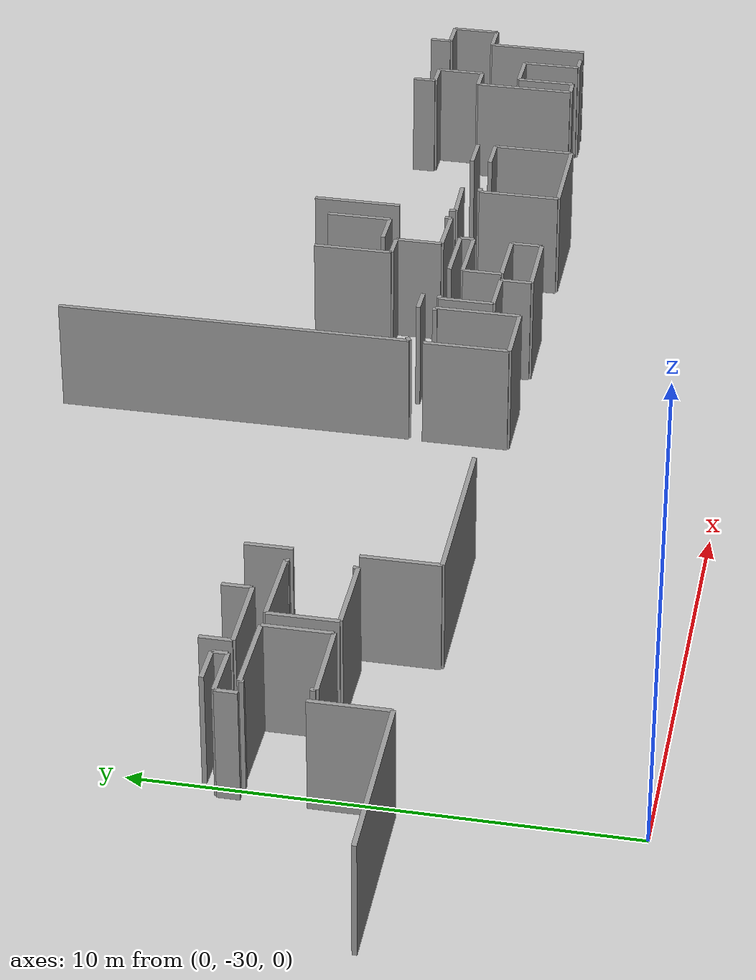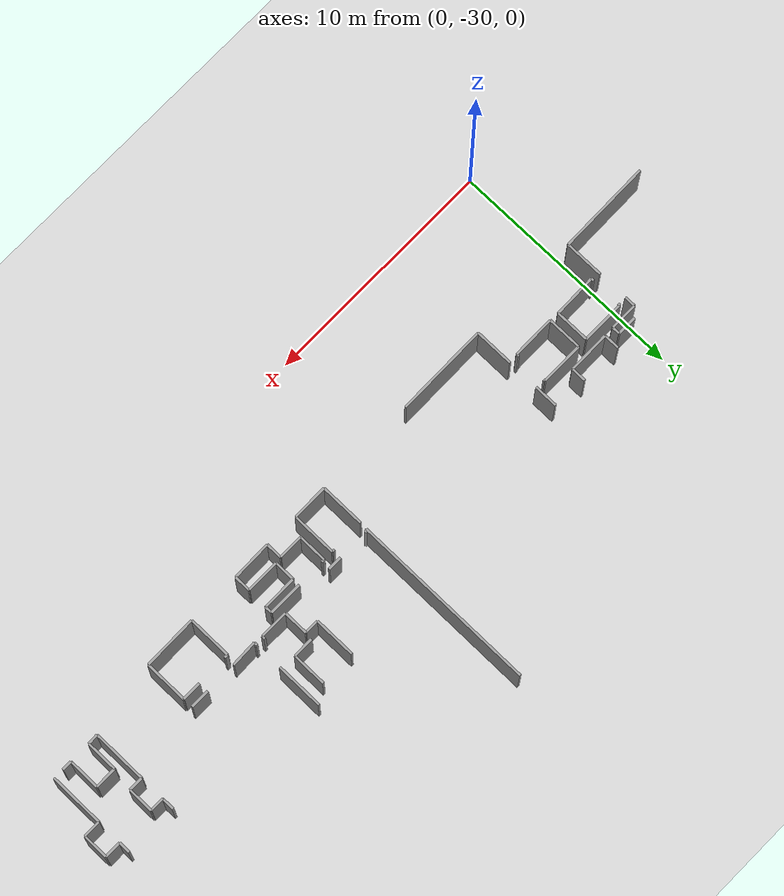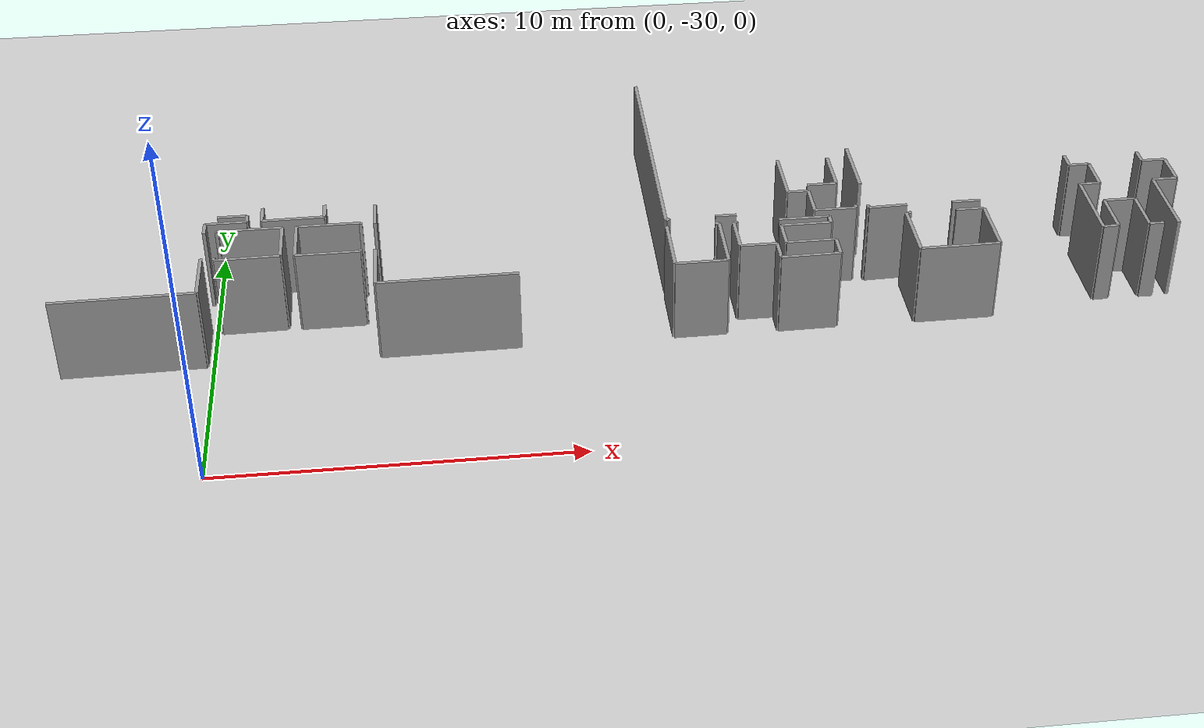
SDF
<sdf version="1.6">
 <world name="default">
  <model name="ground_plane">
   <static>1</static>
   <link name="link">
    <collision name="collision">
     <geometry><plane><normal>0 0 1</normal><size>100 100</size></plane></geometry>
     <surface><friction><ode><mu>100</mu><mu2>50</mu2></ode></friction></surface>
    </collision>
    <visual name="visual">
     <cast_shadows>0</cast_shadows>
     <geometry><plane><normal>0 0 1</normal><size>100 100</size></plane></geometry>
     <material>
      <script><uri>file://media/materials/scripts/gazebo.material</uri><name>Gazebo/Grey</name></script>
     </material>
    </visual>
   </link>
  </model>
  <model name="0510035342_A_40_1_101">
   <static>1</static>
   <link name="Wall_184">
    <collision name="Wall_184_Collision">
     <geometry><box><size>0.83460327136 0.1 2.5</size></box></geometry>
     <pose>0.41730163568 0 1.25 0 0 0</pose>
    </collision>
    <visual name="Wall_184_Visual">
     <pose>0.41730163568 0 1.25 0 0 0</pose>
     <geometry><box><size>0.83460327136 0.1 2.5</size></box></geometry>
     <material>
      <script><uri>file://media/materials/scripts/gazebo.material</uri><name>Gazebo/Grey</name></script>
      <ambient>1 1 1 1</ambient>
     </material>
    </visual>
    <pose>115.832063395 -46.8073758001 0 0 0 0.0</pose>
   </link>
   <link name="Wall_185">
    <collision name="Wall_185_Collision">
     <geometry><box><size>0.318500457178 0.1 2.5</size></box></geometry>
     <pose>0.159250228589 0 1.25 0 0 0</pose>
    </collision>
    <visual name="Wall_185_Visual">
     <pose>0.159250228589 0 1.25 0 0 0</pose>
     <geometry><box><size>0.318500457178 0.1 2.5</size></box></geometry>
     <material>
      <script><uri>file://media/materials/scripts/gazebo.material</uri><name>Gazebo/Grey</name></script>
      <ambient>1 1 1 1</ambient>
     </material>
    </visual>
    <pose>116.666666667 -46.8073758001 0 0 0 -1.57079632679</pose>
   </link>
   <link name="Wall_186">
    <collision name="Wall_186_Collision">
     <geometry><box><size>1.16402519557 0.1 2.5</size></box></geometry>
     <pose>0.582012597785 0 1.25 0 0 0</pose>
    </collision>
    <visual name="Wall_186_Visual">
     <pose>0.582012597785 0 1.25 0 0 0</pose>
     <geometry><box><size>1.16402519557 0.1 2.5</size></box></geometry>
     <material>
      <script><uri>file://media/materials/scripts/gazebo.material</uri><name>Gazebo/Grey</name></script>
      <ambient>1 1 1 1</ambient>
     </material>
    </visual>
    <pose>116.666666667 -47.1258762572 0 0 0 3.14159265359</pose>
   </link>
   <link name="Wall_187">
    <collision name="Wall_187_Collision">
     <geometry><box><size>0.461241491415 0.1 2.5</size></box></geometry>
     <pose>0.230620745708 0 1.25 0 0 0</pose>
    </collision>
    <visual name="Wall_187_Visual">
     <pose>0.230620745708 0 1.25 0 0 0</pose>
     <geometry><box><size>0.461241491415 0.1 2.5</size></box></geometry>
     <material>
      <script><uri>file://media/materials/scripts/gazebo.material</uri><name>Gazebo/Grey</name></script>
      <ambient>1 1 1 1</ambient>
     </material>
    </visual>
    <pose>115.502641471 -47.1258762572 0 0 0 -1.57079632679</pose>
   </link>
   <link name="Wall_188">
    <collision name="Wall_188_Collision">
     <geometry><box><size>1.63390226557 0.1 2.5</size></box></geometry>
     <pose>0.816951132785 0 1.25 0 0 0</pose>
    </collision>
    <visual name="Wall_188_Visual">
     <pose>0.816951132785 0 1.25 0 0 0</pose>
     <geometry><box><size>1.63390226557 0.1 2.5</size></box></geometry>
     <material>
      <script><uri>file://media/materials/scripts/gazebo.material</uri><name>Gazebo/Grey</name></script>
      <ambient>1 1 1 1</ambient>
     </material>
    </visual>
    <pose>115.502641471 -48.8740729452 0 0 0 -1.57079632679</pose>
   </link>
   <link name="Wall_189">
    <collision name="Wall_189_Collision">
     <geometry><box><size>3.94637262156 0.1 2.5</size></box></geometry>
     <pose>1.97318631078 0 1.25 0 0 0</pose>
    </collision>
    <visual name="Wall_189_Visual">
     <pose>1.97318631078 0 1.25 0 0 0</pose>
     <geometry><box><size>3.94637262156 0.1 2.5</size></box></geometry>
     <material>
      <script><uri>file://media/materials/scripts/gazebo.material</uri><name>Gazebo/Grey</name></script>
      <ambient>1 1 1 1</ambient>
     </material>
    </visual>
    <pose>115.502641471 -50.5079752108 0 0 0 -3.12698246769</pose>
   </link>
   <link name="Wall_190">
    <collision name="Wall_190_Collision">
     <geometry><box><size>1.64736360866 0.1 2.5</size></box></geometry>
     <pose>0.823681804328 0 1.25 0 0 0</pose>
    </collision>
    <visual name="Wall_190_Visual">
     <pose>0.823681804328 0 1.25 0 0 0</pose>
     <geometry><box><size>1.64736360866 0.1 2.5</size></box></geometry>
     <material>
      <script><uri>file://media/materials/scripts/gazebo.material</uri><name>Gazebo/Grey</name></script>
      <ambient>1 1 1 1</ambient>
     </material>
    </visual>
    <pose>120.27786244 -50.5669003353 0 0 0 1.57079632679</pose>
   </link>
   <link name="Wall_191">
    <collision name="Wall_191_Collision">
     <geometry><box><size>0.98826577263 0.1 2.5</size></box></geometry>
     <pose>0.494132886315 0 1.25 0 0 0</pose>
    </collision>
    <visual name="Wall_191_Visual">
     <pose>0.494132886315 0 1.25 0 0 0</pose>
     <geometry><box><size>0.98826577263 0.1 2.5</size></box></geometry>
     <material>
      <script><uri>file://media/materials/scripts/gazebo.material</uri><name>Gazebo/Grey</name></script>
      <ambient>1 1 1 1</ambient>
     </material>
    </visual>
    <pose>120.27786244 -47.5980392157 0 0 0 1.57079632679</pose>
   </link>
   <link name="Wall_206">
    <collision name="Wall_206_Collision">
     <geometry><box><size>3.89964801912 0.1 2.5</size></box></geometry>
     <pose>1.94982400956 0 1.25 0 0 0</pose>
    </collision>
    <visual name="Wall_206_Visual">
     <pose>1.94982400956 0 1.25 0 0 0</pose>
     <geometry><box><size>3.89964801912 0.1 2.5</size></box></geometry>
     <material>
      <script><uri>file://media/materials/scripts/gazebo.material</uri><name>Gazebo/Grey</name></script>
      <ambient>1 1 1 1</ambient>
     </material>
    </visual>
    <pose>124.177334146 -50.5298181449 0 0 0 -3.13208339812</pose>
   </link>
   <link name="Wall_207">
    <collision name="Wall_207_Collision">
     <geometry><box><size>7.79818144875 0.1 2.5</size></box></geometry>
     <pose>3.89909072437 0 1.25 0 0 0</pose>
    </collision>
    <visual name="Wall_207_Visual">
     <pose>3.89909072437 0 1.25 0 0 0</pose>
     <geometry><box><size>7.79818144875 0.1 2.5</size></box></geometry>
     <material>
      <script><uri>file://media/materials/scripts/gazebo.material</uri><name>Gazebo/Grey</name></script>
      <ambient>1 1 1 1</ambient>
     </material>
    </visual>
    <pose>128.467946764 -48.3739713502 0 0 0 1.57079632679</pose>
   </link>
   <link name="Wall_221">
    <collision name="Wall_221_Collision">
     <geometry><box><size>0.603982525653 0.1 2.5</size></box></geometry>
     <pose>0.301991262826 0 1.25 0 0 0</pose>
    </collision>
    <visual name="Wall_221_Visual">
     <pose>0.301991262826 0 1.25 0 0 0</pose>
     <geometry><box><size>0.603982525653 0.1 2.5</size></box></geometry>
     <material>
      <script><uri>file://media/materials/scripts/gazebo.material</uri><name>Gazebo/Grey</name></script>
      <ambient>1 1 1 1</ambient>
     </material>
    </visual>
    <pose>130.491212029 -48.3008229198 0 0 0 3.14159265359</pose>
   </link>
   <link name="Wall_222">
    <collision name="Wall_222_Collision">
     <geometry><box><size>0.138921933279 0.1 2.5</size></box></geometry>
     <pose>0.0694609666396 0 1.25 0 0 0</pose>
    </collision>
    <visual name="Wall_222_Visual">
     <pose>0.0694609666396 0 1.25 0 0 0</pose>
     <geometry><box><size>0.138921933279 0.1 2.5</size></box></geometry>
     <material>
      <script><uri>file://media/materials/scripts/gazebo.material</uri><name>Gazebo/Grey</name></script>
      <ambient>1 1 1 1</ambient>
     </material>
    </visual>
    <pose>128.586051001 -48.3008229198 0 0 0 -2.58706308322</pose>
   </link>
   <link name="Wall_223">
    <collision name="Wall_223_Collision">
     <geometry><box><size>0.141217108605 0.1 2.5</size></box></geometry>
     <pose>0.0706085543025 0 1.25 0 0 0</pose>
    </collision>
    <visual name="Wall_223_Visual">
     <pose>0.0706085543025 0 1.25 0 0 0</pose>
     <geometry><box><size>0.141217108605 0.1 2.5</size></box></geometry>
     <material>
      <script><uri>file://media/materials/scripts/gazebo.material</uri><name>Gazebo/Grey</name></script>
      <ambient>1 1 1 1</ambient>
     </material>
    </visual>
    <pose>134.323377019 -48.3528903789 0 0 0 1.57079632679</pose>
   </link>
   <link name="Wall_224">
    <collision name="Wall_224_Collision">
     <geometry><box><size>1.9783094585 0.1 2.5</size></box></geometry>
     <pose>0.989154729249 0 1.25 0 0 0</pose>
    </collision>
    <visual name="Wall_224_Visual">
     <pose>0.989154729249 0 1.25 0 0 0</pose>
     <geometry><box><size>1.9783094585 0.1 2.5</size></box></geometry>
     <material>
      <script><uri>file://media/materials/scripts/gazebo.material</uri><name>Gazebo/Grey</name></script>
      <ambient>1 1 1 1</ambient>
     </material>
    </visual>
    <pose>134.323377019 -47.050695926 0 0 0 1.57079632679</pose>
   </link>
   <link name="Wall_238">
    <collision name="Wall_238_Collision">
     <geometry><box><size>0.820887940668 0.1 2.5</size></box></geometry>
     <pose>0.410443970334 0 1.25 0 0 0</pose>
    </collision>
    <visual name="Wall_238_Visual">
     <pose>0.410443970334 0 1.25 0 0 0</pose>
     <geometry><box><size>0.820887940668 0.1 2.5</size></box></geometry>
     <material>
      <script><uri>file://media/materials/scripts/gazebo.material</uri><name>Gazebo/Grey</name></script>
      <ambient>1 1 1 1</ambient>
     </material>
    </visual>
    <pose>137.585339835 -48.3135223001 0 0 0 3.14159265359</pose>
   </link>
   <link name="Wall_239">
    <collision name="Wall_239_Collision">
     <geometry><box><size>1.11493887783 0.1 2.5</size></box></geometry>
     <pose>0.557469438913 0 1.25 0 0 0</pose>
    </collision>
    <visual name="Wall_239_Visual">
     <pose>0.557469438913 0 1.25 0 0 0</pose>
     <geometry><box><size>1.11493887783 0.1 2.5</size></box></geometry>
     <material>
      <script><uri>file://media/materials/scripts/gazebo.material</uri><name>Gazebo/Grey</name></script>
      <ambient>1 1 1 1</ambient>
     </material>
    </visual>
    <pose>135.437620644 -48.3135223001 0 0 0 -3.10627568267</pose>
   </link>
   <link name="Wall_250">
    <collision name="Wall_250_Collision">
     <geometry><box><size>0.668749365031 0.1 2.5</size></box></geometry>
     <pose>0.334374682515 0 1.25 0 0 0</pose>
    </collision>
    <visual name="Wall_250_Visual">
     <pose>0.334374682515 0 1.25 0 0 0</pose>
     <geometry><box><size>0.668749365031 0.1 2.5</size></box></geometry>
     <material>
      <script><uri>file://media/materials/scripts/gazebo.material</uri><name>Gazebo/Grey</name></script>
      <ambient>1 1 1 1</ambient>
     </material>
    </visual>
    <pose>117.086762166 -47.124098344 0 0 0 1.57079632679</pose>
   </link>
   <link name="Wall_258">
    <collision name="Wall_258_Collision">
     <geometry><box><size>0.615157980291 0.1 2.5</size></box></geometry>
     <pose>0.307578990145 0 1.25 0 0 0</pose>
    </collision>
    <visual name="Wall_258_Visual">
     <pose>0.307578990145 0 1.25 0 0 0</pose>
     <geometry><box><size>0.615157980291 0.1 2.5</size></box></geometry>
     <material>
      <script><uri>file://media/materials/scripts/gazebo.material</uri><name>Gazebo/Grey</name></script>
      <ambient>1 1 1 1</ambient>
     </material>
    </visual>
    <pose>118.845880321 -46.4860814792 0 0 0 -1.57079632679</pose>
   </link>
   <link name="Wall_259">
    <collision name="Wall_259_Collision">
     <geometry><box><size>1.75926666881 0.1 2.5</size></box></geometry>
     <pose>0.879633334403 0 1.25 0 0 0</pose>
    </collision>
    <visual name="Wall_259_Visual">
     <pose>0.879633334403 0 1.25 0 0 0</pose>
     <geometry><box><size>1.75926666881 0.1 2.5</size></box></geometry>
     <material>
      <script><uri>file://media/materials/scripts/gazebo.material</uri><name>Gazebo/Grey</name></script>
      <ambient>1 1 1 1</ambient>
     </material>
    </visual>
    <pose>118.845880321 -47.1012394595 0 0 0 -3.12859887149</pose>
   </link>
   <link name="Wall_260">
    <collision name="Wall_260_Collision">
     <geometry><box><size>0.113024484405 0.1 2.5</size></box></geometry>
     <pose>0.0565122422026 0 1.25 0 0 0</pose>
    </collision>
    <visual name="Wall_260_Visual">
     <pose>0.0565122422026 0 1.25 0 0 0</pose>
     <geometry><box><size>0.113024484405 0.1 2.5</size></box></geometry>
     <material>
      <script><uri>file://media/materials/scripts/gazebo.material</uri><name>Gazebo/Grey</name></script>
      <ambient>1 1 1 1</ambient>
     </material>
    </visual>
    <pose>115.857462156 -48.986843442 0 0 0 1.57079632679</pose>
   </link>
   <link name="Wall_261">
    <collision name="Wall_261_Collision">
     <geometry><box><size>0.0878797114701 0.1 2.5</size></box></geometry>
     <pose>0.043939855735 0 1.25 0 0 0</pose>
    </collision>
    <visual name="Wall_261_Visual">
     <pose>0.043939855735 0 1.25 0 0 0</pose>
     <geometry><box><size>0.0878797114701 0.1 2.5</size></box></geometry>
     <material>
      <script><uri>file://media/materials/scripts/gazebo.material</uri><name>Gazebo/Grey</name></script>
      <ambient>1 1 1 1</ambient>
     </material>
    </visual>
    <pose>115.857462156 -47.6181042365 0 0 0 1.57079632679</pose>
   </link>
   <link name="Wall_262">
    <collision name="Wall_262_Collision">
     <geometry><box><size>1.81423346541 0.1 2.5</size></box></geometry>
     <pose>0.907116732703 0 1.25 0 0 0</pose>
    </collision>
    <visual name="Wall_262_Visual">
     <pose>0.907116732703 0 1.25 0 0 0</pose>
     <geometry><box><size>1.81423346541 0.1 2.5</size></box></geometry>
     <material>
      <script><uri>file://media/materials/scripts/gazebo.material</uri><name>Gazebo/Grey</name></script>
      <ambient>1 1 1 1</ambient>
     </material>
    </visual>
    <pose>115.857462156 -47.530224525 0 0 0 0.0</pose>
   </link>
   <link name="Wall_263">
    <collision name="Wall_263_Collision">
     <geometry><box><size>1.42334654069 0.1 2.5</size></box></geometry>
     <pose>0.711673270344 0 1.25 0 0 0</pose>
    </collision>
    <visual name="Wall_263_Visual">
     <pose>0.711673270344 0 1.25 0 0 0</pose>
     <geometry><box><size>1.42334654069 0.1 2.5</size></box></geometry>
     <material>
      <script><uri>file://media/materials/scripts/gazebo.material</uri><name>Gazebo/Grey</name></script>
      <ambient>1 1 1 1</ambient>
     </material>
    </visual>
    <pose>117.671695621 -47.530224525 0 0 0 -1.57079632679</pose>
   </link>
   <link name="Wall_264">
    <collision name="Wall_264_Collision">
     <geometry><box><size>1.81453854135 0.1 2.5</size></box></geometry>
     <pose>0.907269270673 0 1.25 0 0 0</pose>
    </collision>
    <visual name="Wall_264_Visual">
     <pose>0.907269270673 0 1.25 0 0 0</pose>
     <geometry><box><size>1.81453854135 0.1 2.5</size></box></geometry>
     <material>
      <script><uri>file://media/materials/scripts/gazebo.material</uri><name>Gazebo/Grey</name></script>
      <ambient>1 1 1 1</ambient>
     </material>
    </visual>
    <pose>117.671695621 -48.9535710657 0 0 0 -3.1232550761</pose>
   </link>
   <link name="Wall_265">
    <collision name="Wall_265_Collision">
     <geometry><box><size>1.4523011277 0.1 2.5</size></box></geometry>
     <pose>0.726150563852 0 1.25 0 0 0</pose>
    </collision>
    <visual name="Wall_265_Visual">
     <pose>0.726150563852 0 1.25 0 0 0</pose>
     <geometry><box><size>1.4523011277 0.1 2.5</size></box></geometry>
     <material>
      <script><uri>file://media/materials/scripts/gazebo.material</uri><name>Gazebo/Grey</name></script>
      <ambient>1 1 1 1</ambient>
     </material>
    </visual>
    <pose>118.072234075 -48.9863354668 0 0 0 1.57079632679</pose>
   </link>
   <link name="Wall_266">
    <collision name="Wall_266_Collision">
     <geometry><box><size>1.80153408514 0.1 2.5</size></box></geometry>
     <pose>0.900767042568 0 1.25 0 0 0</pose>
    </collision>
    <visual name="Wall_266_Visual">
     <pose>0.900767042568 0 1.25 0 0 0</pose>
     <geometry><box><size>1.80153408514 0.1 2.5</size></box></geometry>
     <material>
      <script><uri>file://media/materials/scripts/gazebo.material</uri><name>Gazebo/Grey</name></script>
      <ambient>1 1 1 1</ambient>
     </material>
    </visual>
    <pose>118.072234075 -47.5340343391 0 0 0 0.0</pose>
   </link>
   <link name="Wall_267">
    <collision name="Wall_267_Collision">
     <geometry><box><size>0.0711165295134 0.1 2.5</size></box></geometry>
     <pose>0.0355582647567 0 1.25 0 0 0</pose>
    </collision>
    <visual name="Wall_267_Visual">
     <pose>0.0355582647567 0 1.25 0 0 0</pose>
     <geometry><box><size>0.0711165295134 0.1 2.5</size></box></geometry>
     <material>
      <script><uri>file://media/materials/scripts/gazebo.material</uri><name>Gazebo/Grey</name></script>
      <ambient>1 1 1 1</ambient>
     </material>
    </visual>
    <pose>119.87376816 -47.5340343391 0 0 0 -1.57079632679</pose>
   </link>
   <link name="Wall_268">
    <collision name="Wall_268_Collision">
     <geometry><box><size>0.10057909174 0.1 2.5</size></box></geometry>
     <pose>0.0502895458702 0 1.25 0 0 0</pose>
    </collision>
    <visual name="Wall_268_Visual">
     <pose>0.0502895458702 0 1.25 0 0 0</pose>
     <geometry><box><size>0.10057909174 0.1 2.5</size></box></geometry>
     <material>
      <script><uri>file://media/materials/scripts/gazebo.material</uri><name>Gazebo/Grey</name></script>
      <ambient>1 1 1 1</ambient>
     </material>
    </visual>
    <pose>119.87376816 -48.8738189576 0 0 0 -1.57079632679</pose>
   </link>
   <link name="Wall_269">
    <collision name="Wall_269_Collision">
     <geometry><box><size>1.80157363487 0.1 2.5</size></box></geometry>
     <pose>0.900786817433 0 1.25 0 0 0</pose>
    </collision>
    <visual name="Wall_269_Visual">
     <pose>0.900786817433 0 1.25 0 0 0</pose>
     <geometry><box><size>1.80157363487 0.1 2.5</size></box></geometry>
     <material>
      <script><uri>file://media/materials/scripts/gazebo.material</uri><name>Gazebo/Grey</name></script>
      <ambient>1 1 1 1</ambient>
     </material>
    </visual>
    <pose>119.87376816 -48.9743980494 0 0 0 -3.13496649933</pose>
   </link>
   <link name="Wall_270">
    <collision name="Wall_270_Collision">
     <geometry><box><size>0.68094077009 0.1 2.5</size></box></geometry>
     <pose>0.340470385045 0 1.25 0 0 0</pose>
    </collision>
    <visual name="Wall_270_Visual">
     <pose>0.340470385045 0 1.25 0 0 0</pose>
     <geometry><box><size>0.68094077009 0.1 2.5</size></box></geometry>
     <material>
      <script><uri>file://media/materials/scripts/gazebo.material</uri><name>Gazebo/Grey</name></script>
      <ambient>1 1 1 1</ambient>
     </material>
    </visual>
    <pose>131.402519557 -50.5628365336 0 0 0 1.57079632679</pose>
   </link>
   <link name="Wall_271">
    <collision name="Wall_271_Collision">
     <geometry><box><size>1.0431270954 0.1 2.5</size></box></geometry>
     <pose>0.521563547699 0 1.25 0 0 0</pose>
    </collision>
    <visual name="Wall_271_Visual">
     <pose>0.521563547699 0 1.25 0 0 0</pose>
     <geometry><box><size>1.0431270954 0.1 2.5</size></box></geometry>
     <material>
      <script><uri>file://media/materials/scripts/gazebo.material</uri><name>Gazebo/Grey</name></script>
      <ambient>1 1 1 1</ambient>
     </material>
    </visual>
    <pose>131.402519557 -49.8818957635 0 0 0 3.14159265359</pose>
   </link>
   <link name="Wall_272">
    <collision name="Wall_272_Collision">
     <geometry><box><size>1.20720308849 0.1 2.5</size></box></geometry>
     <pose>0.603601544245 0 1.25 0 0 0</pose>
    </collision>
    <visual name="Wall_272_Visual">
     <pose>0.603601544245 0 1.25 0 0 0</pose>
     <geometry><box><size>1.20720308849 0.1 2.5</size></box></geometry>
     <material>
      <script><uri>file://media/materials/scripts/gazebo.material</uri><name>Gazebo/Grey</name></script>
      <ambient>1 1 1 1</ambient>
     </material>
    </visual>
    <pose>130.359392462 -49.8818957635 0 0 0 1.57079632679</pose>
   </link>
   <link name="Wall_273">
    <collision name="Wall_273_Collision">
     <geometry><box><size>0.125723864675 0.1 2.5</size></box></geometry>
     <pose>0.0628619323377 0 1.25 0 0 0</pose>
    </collision>
    <visual name="Wall_273_Visual">
     <pose>0.0628619323377 0 1.25 0 0 0</pose>
     <geometry><box><size>0.125723864675 0.1 2.5</size></box></geometry>
     <material>
      <script><uri>file://media/materials/scripts/gazebo.material</uri><name>Gazebo/Grey</name></script>
      <ambient>1 1 1 1</ambient>
     </material>
    </visual>
    <pose>130.359392462 -48.674692675 0 0 0 0.0</pose>
   </link>
   <link name="Wall_274">
    <collision name="Wall_274_Collision">
     <geometry><box><size>1.43960174743 0.1 2.5</size></box></geometry>
     <pose>0.719800873717 0 1.25 0 0 0</pose>
    </collision>
    <visual name="Wall_274_Visual">
     <pose>0.719800873717 0 1.25 0 0 0</pose>
     <geometry><box><size>1.43960174743 0.1 2.5</size></box></geometry>
     <material>
      <script><uri>file://media/materials/scripts/gazebo.material</uri><name>Gazebo/Grey</name></script>
      <ambient>1 1 1 1</ambient>
     </material>
    </visual>
    <pose>131.662856853 -48.674692675 0 0 0 0.0</pose>
   </link>
   <link name="Wall_275">
    <collision name="Wall_275_Collision">
     <geometry><box><size>0.305547089302 0.1 2.5</size></box></geometry>
     <pose>0.152773544651 0 1.25 0 0 0</pose>
    </collision>
    <visual name="Wall_275_Visual">
     <pose>0.152773544651 0 1.25 0 0 0</pose>
     <geometry><box><size>0.305547089302 0.1 2.5</size></box></geometry>
     <material>
      <script><uri>file://media/materials/scripts/gazebo.material</uri><name>Gazebo/Grey</name></script>
      <ambient>1 1 1 1</ambient>
     </material>
    </visual>
    <pose>133.1024586 -48.674692675 0 0 0 -1.57079632679</pose>
   </link>
   <link name="Wall_276">
    <collision name="Wall_276_Collision">
     <geometry><box><size>1.4335060449 0.1 2.5</size></box></geometry>
     <pose>0.716753022452 0 1.25 0 0 0</pose>
    </collision>
    <visual name="Wall_276_Visual">
     <pose>0.716753022452 0 1.25 0 0 0</pose>
     <geometry><box><size>1.4335060449 0.1 2.5</size></box></geometry>
     <material>
      <script><uri>file://media/materials/scripts/gazebo.material</uri><name>Gazebo/Grey</name></script>
      <ambient>1 1 1 1</ambient>
     </material>
    </visual>
    <pose>133.1024586 -48.9802397643 0 0 0 3.14159265359</pose>
   </link>
   <link name="Wall_277">
    <collision name="Wall_277_Collision">
     <geometry><box><size>0.86889159809 0.1 2.5</size></box></geometry>
     <pose>0.434445799045 0 1.25 0 0 0</pose>
    </collision>
    <visual name="Wall_277_Visual">
     <pose>0.434445799045 0 1.25 0 0 0</pose>
     <geometry><box><size>0.86889159809 0.1 2.5</size></box></geometry>
     <material>
      <script><uri>file://media/materials/scripts/gazebo.material</uri><name>Gazebo/Grey</name></script>
      <ambient>1 1 1 1</ambient>
     </material>
    </visual>
    <pose>131.668952555 -48.9802397643 0 0 0 -1.57079632679</pose>
   </link>
   <link name="Wall_278">
    <collision name="Wall_278_Collision">
     <geometry><box><size>1.40378949507 0.1 2.5</size></box></geometry>
     <pose>0.701894747536 0 1.25 0 0 0</pose>
    </collision>
    <visual name="Wall_278_Visual">
     <pose>0.701894747536 0 1.25 0 0 0</pose>
     <geometry><box><size>1.40378949507 0.1 2.5</size></box></geometry>
     <material>
      <script><uri>file://media/materials/scripts/gazebo.material</uri><name>Gazebo/Grey</name></script>
      <ambient>1 1 1 1</ambient>
     </material>
    </visual>
    <pose>131.668952555 -49.8491313624 0 0 0 0.0</pose>
   </link>
   <link name="Wall_279">
    <collision name="Wall_279_Collision">
     <geometry><box><size>0.687290460226 0.1 2.5</size></box></geometry>
     <pose>0.343645230113 0 1.25 0 0 0</pose>
    </collision>
    <visual name="Wall_279_Visual">
     <pose>0.343645230113 0 1.25 0 0 0</pose>
     <geometry><box><size>0.687290460226 0.1 2.5</size></box></geometry>
     <material>
      <script><uri>file://media/materials/scripts/gazebo.material</uri><name>Gazebo/Grey</name></script>
      <ambient>1 1 1 1</ambient>
     </material>
    </visual>
    <pose>133.07274205 -49.8491313624 0 0 0 -1.57079632679</pose>
   </link>
   <link name="Wall_280">
    <collision name="Wall_280_Collision">
     <geometry><box><size>1.67043135553 0.1 2.5</size></box></geometry>
     <pose>0.835215677767 0 1.25 0 0 0</pose>
    </collision>
    <visual name="Wall_280_Visual">
     <pose>0.835215677767 0 1.25 0 0 0</pose>
     <geometry><box><size>1.67043135553 0.1 2.5</size></box></geometry>
     <material>
      <script><uri>file://media/materials/scripts/gazebo.material</uri><name>Gazebo/Grey</name></script>
      <ambient>1 1 1 1</ambient>
     </material>
    </visual>
    <pose>133.07274205 -50.5364218226 0 0 0 -3.12577888677</pose>
   </link>
   <link name="Wall_281">
    <collision name="Wall_281_Collision">
     <geometry><box><size>1.83506044905 0.1 2.5</size></box></geometry>
     <pose>0.917530224525 0 1.25 0 0 0</pose>
    </collision>
    <visual name="Wall_281_Visual">
     <pose>0.917530224525 0 1.25 0 0 0</pose>
     <geometry><box><size>1.83506044905 0.1 2.5</size></box></geometry>
     <material>
      <script><uri>file://media/materials/scripts/gazebo.material</uri><name>Gazebo/Grey</name></script>
      <ambient>1 1 1 1</ambient>
     </material>
    </visual>
    <pose>135.322310271 -50.5669003353 0 0 0 1.57079632679</pose>
   </link>
   <link name="Wall_282">
    <collision name="Wall_282_Collision">
     <geometry><box><size>0.147058823529 0.1 2.5</size></box></geometry>
     <pose>0.0735294117647 0 1.25 0 0 0</pose>
    </collision>
    <visual name="Wall_282_Visual">
     <pose>0.0735294117647 0 1.25 0 0 0</pose>
     <geometry><box><size>0.147058823529 0.1 2.5</size></box></geometry>
     <material>
      <script><uri>file://media/materials/scripts/gazebo.material</uri><name>Gazebo/Grey</name></script>
      <ambient>1 1 1 1</ambient>
     </material>
    </visual>
    <pose>135.322310271 -48.7318398862 0 0 0 0.0</pose>
   </link>
   <link name="Wall_283">
    <collision name="Wall_283_Collision">
     <geometry><box><size>0.808188560398 0.1 2.5</size></box></geometry>
     <pose>0.404094280199 0 1.25 0 0 0</pose>
    </collision>
    <visual name="Wall_283_Visual">
     <pose>0.404094280199 0 1.25 0 0 0</pose>
     <geometry><box><size>0.808188560398 0.1 2.5</size></box></geometry>
     <material>
      <script><uri>file://media/materials/scripts/gazebo.material</uri><name>Gazebo/Grey</name></script>
      <ambient>1 1 1 1</ambient>
     </material>
    </visual>
    <pose>136.777151275 -48.7318398862 0 0 0 0.0</pose>
   </link>
   <link name="Wall_284">
    <collision name="Wall_284_Collision">
     <geometry><box><size>1.80889972569 0.1 2.5</size></box></geometry>
     <pose>0.904449862847 0 1.25 0 0 0</pose>
    </collision>
    <visual name="Wall_284_Visual">
     <pose>0.904449862847 0 1.25 0 0 0</pose>
     <geometry><box><size>1.80889972569 0.1 2.5</size></box></geometry>
     <material>
      <script><uri>file://media/materials/scripts/gazebo.material</uri><name>Gazebo/Grey</name></script>
      <ambient>1 1 1 1</ambient>
     </material>
    </visual>
    <pose>137.585339835 -48.7318398862 0 0 0 -1.57079632679</pose>
   </link>
   <link name="Wall_285">
    <collision name="Wall_285_Collision">
     <geometry><box><size>2.26318076867 0.1 2.5</size></box></geometry>
     <pose>1.13159038434 0 1.25 0 0 0</pose>
    </collision>
    <visual name="Wall_285_Visual">
     <pose>1.13159038434 0 1.25 0 0 0</pose>
     <geometry><box><size>2.26318076867 0.1 2.5</size></box></geometry>
     <material>
      <script><uri>file://media/materials/scripts/gazebo.material</uri><name>Gazebo/Grey</name></script>
      <ambient>1 1 1 1</ambient>
     </material>
    </visual>
    <pose>137.585339835 -50.5407396119 0 0 0 -3.1300331236</pose>
   </link>
   <link name="Wall_286">
    <collision name="Wall_286_Collision">
     <geometry><box><size>1.03550746724 0.1 2.5</size></box></geometry>
     <pose>0.517753733618 0 1.25 0 0 0</pose>
    </collision>
    <visual name="Wall_286_Visual">
     <pose>0.517753733618 0 1.25 0 0 0</pose>
     <geometry><box><size>1.03550746724 0.1 2.5</size></box></geometry>
     <material>
      <script><uri>file://media/materials/scripts/gazebo.material</uri><name>Gazebo/Grey</name></script>
      <ambient>1 1 1 1</ambient>
     </material>
    </visual>
    <pose>132.761607234 -48.3008229198 0 0 0 1.57079632679</pose>
   </link>
   <link name="Wall_287">
    <collision name="Wall_287_Collision">
     <geometry><box><size>0.606268414101 0.1 2.5</size></box></geometry>
     <pose>0.303134207051 0 1.25 0 0 0</pose>
    </collision>
    <visual name="Wall_287_Visual">
     <pose>0.303134207051 0 1.25 0 0 0</pose>
     <geometry><box><size>0.606268414101 0.1 2.5</size></box></geometry>
     <material>
      <script><uri>file://media/materials/scripts/gazebo.material</uri><name>Gazebo/Grey</name></script>
      <ambient>1 1 1 1</ambient>
     </material>
    </visual>
    <pose>132.761607234 -47.2653154526 0 0 0 3.14159265359</pose>
   </link>
   <link name="Wall_288">
    <collision name="Wall_288_Collision">
     <geometry><box><size>1.75530834095 0.1 2.5</size></box></geometry>
     <pose>0.877654170476 0 1.25 0 0 0</pose>
    </collision>
    <visual name="Wall_288_Visual">
     <pose>0.877654170476 0 1.25 0 0 0</pose>
     <geometry><box><size>1.75530834095 0.1 2.5</size></box></geometry>
     <material>
      <script><uri>file://media/materials/scripts/gazebo.material</uri><name>Gazebo/Grey</name></script>
      <ambient>1 1 1 1</ambient>
     </material>
    </visual>
    <pose>132.155338819 -47.2653154526 0 0 0 1.57079632679</pose>
   </link>
   <link name="Wall_291">
    <collision name="Wall_291_Collision">
     <geometry><box><size>0.858732093874 0.1 2.5</size></box></geometry>
     <pose>0.429366046937 0 1.25 0 0 0</pose>
    </collision>
    <visual name="Wall_291_Visual">
     <pose>0.429366046937 0 1.25 0 0 0</pose>
     <geometry><box><size>0.858732093874 0.1 2.5</size></box></geometry>
     <material>
      <script><uri>file://media/materials/scripts/gazebo.material</uri><name>Gazebo/Grey</name></script>
      <ambient>1 1 1 1</ambient>
     </material>
    </visual>
    <pose>132.786752007 -46.9496088591 0 0 0 0.0</pose>
   </link>
   <link name="Wall_292">
    <collision name="Wall_292_Collision">
     <geometry><box><size>1.43960174743 0.1 2.5</size></box></geometry>
     <pose>0.719800873717 0 1.25 0 0 0</pose>
    </collision>
    <visual name="Wall_292_Visual">
     <pose>0.719800873717 0 1.25 0 0 0</pose>
     <geometry><box><size>1.43960174743 0.1 2.5</size></box></geometry>
     <material>
      <script><uri>file://media/materials/scripts/gazebo.material</uri><name>Gazebo/Grey</name></script>
      <ambient>1 1 1 1</ambient>
     </material>
    </visual>
    <pose>133.6454841 -46.9496088591 0 0 0 1.57079632679</pose>
   </link>
   <link name="Wall_295">
    <collision name="Wall_295_Collision">
     <geometry><box><size>0.142741034238 0.1 2.5</size></box></geometry>
     <pose>0.0713705171188 0 1.25 0 0 0</pose>
    </collision>
    <visual name="Wall_295_Visual">
     <pose>0.0713705171188 0 1.25 0 0 0</pose>
     <geometry><box><size>0.142741034238 0.1 2.5</size></box></geometry>
     <material>
      <script><uri>file://media/materials/scripts/gazebo.material</uri><name>Gazebo/Grey</name></script>
      <ambient>1 1 1 1</ambient>
     </material>
    </visual>
    <pose>133.961190694 -48.1690033526 0 0 0 -1.57079632679</pose>
   </link>
   <link name="Wall_296">
    <collision name="Wall_296_Collision">
     <geometry><box><size>1.19963317591 0.1 2.5</size></box></geometry>
     <pose>0.599816587953 0 1.25 0 0 0</pose>
    </collision>
    <visual name="Wall_296_Visual">
     <pose>0.599816587953 0 1.25 0 0 0</pose>
     <geometry><box><size>1.19963317591 0.1 2.5</size></box></geometry>
     <material>
      <script><uri>file://media/materials/scripts/gazebo.material</uri><name>Gazebo/Grey</name></script>
      <ambient>1 1 1 1</ambient>
     </material>
    </visual>
    <pose>133.961190694 -48.3117443869 0 0 0 3.13248852232</pose>
   </link>
   <link name="Wall_297">
    <collision name="Wall_297_Collision">
     <geometry><box><size>1.87722239155 0.1 2.5</size></box></geometry>
     <pose>0.938611195774 0 1.25 0 0 0</pose>
    </collision>
    <visual name="Wall_297_Visual">
     <pose>0.938611195774 0 1.25 0 0 0</pose>
     <geometry><box><size>1.87722239155 0.1 2.5</size></box></geometry>
     <material>
      <script><uri>file://media/materials/scripts/gazebo.material</uri><name>Gazebo/Grey</name></script>
      <ambient>1 1 1 1</ambient>
     </material>
    </visual>
    <pose>128.448897694 -50.5519150665 0 0 0 1.57079632679</pose>
   </link>
   <link name="Wall_298">
    <collision name="Wall_298_Collision">
     <geometry><box><size>0.109722645535 0.1 2.5</size></box></geometry>
     <pose>0.0548613227675 0 1.25 0 0 0</pose>
    </collision>
    <visual name="Wall_298_Visual">
     <pose>0.0548613227675 0 1.25 0 0 0</pose>
     <geometry><box><size>0.109722645535 0.1 2.5</size></box></geometry>
     <material>
      <script><uri>file://media/materials/scripts/gazebo.material</uri><name>Gazebo/Grey</name></script>
      <ambient>1 1 1 1</ambient>
     </material>
    </visual>
    <pose>129.83236818 -48.674692675 0 0 0 0.0</pose>
   </link>
   <link name="Wall_299">
    <collision name="Wall_299_Collision">
     <geometry><box><size>1.86172914762 0.1 2.5</size></box></geometry>
     <pose>0.930864573809 0 1.25 0 0 0</pose>
    </collision>
    <visual name="Wall_299_Visual">
     <pose>0.930864573809 0 1.25 0 0 0</pose>
     <geometry><box><size>1.86172914762 0.1 2.5</size></box></geometry>
     <material>
      <script><uri>file://media/materials/scripts/gazebo.material</uri><name>Gazebo/Grey</name></script>
      <ambient>1 1 1 1</ambient>
     </material>
    </visual>
    <pose>129.942090826 -48.674692675 0 0 0 -1.57079632679</pose>
   </link>
   <link name="Wall_300">
    <collision name="Wall_300_Collision">
     <geometry><box><size>1.4932735083 0.1 2.5</size></box></geometry>
     <pose>0.746636754149 0 1.25 0 0 0</pose>
    </collision>
    <visual name="Wall_300_Visual">
     <pose>0.746636754149 0 1.25 0 0 0</pose>
     <geometry><box><size>1.4932735083 0.1 2.5</size></box></geometry>
     <material>
      <script><uri>file://media/materials/scripts/gazebo.material</uri><name>Gazebo/Grey</name></script>
      <ambient>1 1 1 1</ambient>
     </material>
    </visual>
    <pose>129.942090826 -50.5364218226 0 0 0 -3.13121711165</pose>
   </link>
   <link name="Wall_438">
    <collision name="Wall_438_Collision">
     <geometry><box><size>2.27268109316 0.1 2.5</size></box></geometry>
     <pose>1.13634054658 0 1.25 0 0 0</pose>
    </collision>
    <visual name="Wall_438_Visual">
     <pose>1.13634054658 0 1.25 0 0 0</pose>
     <geometry><box><size>2.27268109316 0.1 2.5</size></box></geometry>
     <material>
      <script><uri>file://media/materials/scripts/gazebo.material</uri><name>Gazebo/Grey</name></script>
      <ambient>1 1 1 1</ambient>
     </material>
    </visual>
    <pose>140.692116225 -50.0591791121 0 0 0 1.57079632679</pose>
   </link>
   <link name="Wall_439">
    <collision name="Wall_439_Collision">
     <geometry><box><size>0.592045108199 0.1 2.5</size></box></geometry>
     <pose>0.296022554099 0 1.25 0 0 0</pose>
    </collision>
    <visual name="Wall_439_Visual">
     <pose>0.296022554099 0 1.25 0 0 0</pose>
     <geometry><box><size>0.592045108199 0.1 2.5</size></box></geometry>
     <material>
      <script><uri>file://media/materials/scripts/gazebo.material</uri><name>Gazebo/Grey</name></script>
      <ambient>1 1 1 1</ambient>
     </material>
    </visual>
    <pose>140.692116225 -47.7864980189 0 0 0 0.0</pose>
   </link>
   <link name="Wall_440">
    <collision name="Wall_440_Collision">
     <geometry><box><size>1.06928781875 0.1 2.5</size></box></geometry>
     <pose>0.534643909377 0 1.25 0 0 0</pose>
    </collision>
    <visual name="Wall_440_Visual">
     <pose>0.534643909377 0 1.25 0 0 0</pose>
     <geometry><box><size>1.06928781875 0.1 2.5</size></box></geometry>
     <material>
      <script><uri>file://media/materials/scripts/gazebo.material</uri><name>Gazebo/Grey</name></script>
      <ambient>1 1 1 1</ambient>
     </material>
    </visual>
    <pose>141.284161333 -47.7864980189 0 0 0 1.57079632679</pose>
   </link>
   <link name="Wall_441">
    <collision name="Wall_441_Collision">
     <geometry><box><size>0.592045108199 0.1 2.5</size></box></geometry>
     <pose>0.296022554099 0 1.25 0 0 0</pose>
    </collision>
    <visual name="Wall_441_Visual">
     <pose>0.296022554099 0 1.25 0 0 0</pose>
     <geometry><box><size>0.592045108199 0.1 2.5</size></box></geometry>
     <material>
      <script><uri>file://media/materials/scripts/gazebo.material</uri><name>Gazebo/Grey</name></script>
      <ambient>1 1 1 1</ambient>
     </material>
    </visual>
    <pose>141.284161333 -46.7172102001 0 0 0 3.14159265359</pose>
   </link>
   <link name="Wall_442">
    <collision name="Wall_442_Collision">
     <geometry><box><size>0.525246367977 0.1 2.5</size></box></geometry>
     <pose>0.262623183989 0 1.25 0 0 0</pose>
    </collision>
    <visual name="Wall_442_Visual">
     <pose>0.262623183989 0 1.25 0 0 0</pose>
     <geometry><box><size>0.525246367977 0.1 2.5</size></box></geometry>
     <material>
      <script><uri>file://media/materials/scripts/gazebo.material</uri><name>Gazebo/Grey</name></script>
      <ambient>1 1 1 1</ambient>
     </material>
    </visual>
    <pose>140.692116225 -46.7172102001 0 0 0 1.57079632679</pose>
   </link>
   <link name="Wall_446">
    <collision name="Wall_446_Collision">
     <geometry><box><size>0.416793660469 0.1 2.5</size></box></geometry>
     <pose>0.208396830235 0 1.25 0 0 0</pose>
    </collision>
    <visual name="Wall_446_Visual">
     <pose>0.208396830235 0 1.25 0 0 0</pose>
     <geometry><box><size>0.416793660469 0.1 2.5</size></box></geometry>
     <material>
      <script><uri>file://media/materials/scripts/gazebo.material</uri><name>Gazebo/Grey</name></script>
      <ambient>1 1 1 1</ambient>
     </material>
    </visual>
    <pose>142.455298181 -50.0495275831 0 0 0 3.14159265359</pose>
   </link>
   <link name="Wall_447">
    <collision name="Wall_447_Collision">
     <geometry><box><size>1.32708523824 0.1 2.5</size></box></geometry>
     <pose>0.66354261912 0 1.25 0 0 0</pose>
    </collision>
    <visual name="Wall_447_Visual">
     <pose>0.66354261912 0 1.25 0 0 0</pose>
     <geometry><box><size>1.32708523824 0.1 2.5</size></box></geometry>
     <material>
      <script><uri>file://media/materials/scripts/gazebo.material</uri><name>Gazebo/Grey</name></script>
      <ambient>1 1 1 1</ambient>
     </material>
    </visual>
    <pose>142.038504521 -50.0495275831 0 0 0 1.57079632679</pose>
   </link>
   <link name="Wall_448">
    <collision name="Wall_448_Collision">
     <geometry><box><size>0.906989738901 0.1 2.5</size></box></geometry>
     <pose>0.45349486945 0 1.25 0 0 0</pose>
    </collision>
    <visual name="Wall_448_Visual">
     <pose>0.45349486945 0 1.25 0 0 0</pose>
     <geometry><box><size>0.906989738901 0.1 2.5</size></box></geometry>
     <material>
      <script><uri>file://media/materials/scripts/gazebo.material</uri><name>Gazebo/Grey</name></script>
      <ambient>1 1 1 1</ambient>
     </material>
    </visual>
    <pose>142.038504521 -48.7224423448 0 0 0 3.14159265359</pose>
   </link>
   <link name="Wall_449">
    <collision name="Wall_449_Collision">
     <geometry><box><size>1.31768769684 0.1 2.5</size></box></geometry>
     <pose>0.65884384842 0 1.25 0 0 0</pose>
    </collision>
    <visual name="Wall_449_Visual">
     <pose>0.65884384842 0 1.25 0 0 0</pose>
     <geometry><box><size>1.31768769684 0.1 2.5</size></box></geometry>
     <material>
      <script><uri>file://media/materials/scripts/gazebo.material</uri><name>Gazebo/Grey</name></script>
      <ambient>1 1 1 1</ambient>
     </material>
    </visual>
    <pose>141.131514782 -48.7224423448 0 0 0 -1.57079632679</pose>
   </link>
   <link name="Wall_450">
    <collision name="Wall_450_Collision">
     <geometry><box><size>0.439811276896 0.1 2.5</size></box></geometry>
     <pose>0.219905638448 0 1.25 0 0 0</pose>
    </collision>
    <visual name="Wall_450_Visual">
     <pose>0.219905638448 0 1.25 0 0 0</pose>
     <geometry><box><size>0.439811276896 0.1 2.5</size></box></geometry>
     <material>
      <script><uri>file://media/materials/scripts/gazebo.material</uri><name>Gazebo/Grey</name></script>
      <ambient>1 1 1 1</ambient>
     </material>
    </visual>
    <pose>141.131514782 -50.0401300417 0 0 0 -3.0982671815</pose>
   </link>
   <link name="Wall_451">
    <collision name="Wall_451_Collision">
     <geometry><box><size>2.29909580412 0.1 2.5</size></box></geometry>
     <pose>1.14954790206 0 1.25 0 0 0</pose>
    </collision>
    <visual name="Wall_451_Visual">
     <pose>1.14954790206 0 1.25 0 0 0</pose>
     <geometry><box><size>2.29909580412 0.1 2.5</size></box></geometry>
     <material>
      <script><uri>file://media/materials/scripts/gazebo.material</uri><name>Gazebo/Grey</name></script>
      <ambient>1 1 1 1</ambient>
     </material>
    </visual>
    <pose>142.888347049 -50.0685766535 0 0 0 1.57079632679</pose>
   </link>
   <link name="Wall_452">
    <collision name="Wall_452_Collision">
     <geometry><box><size>0.714975109215 0.1 2.5</size></box></geometry>
     <pose>0.357487554607 0 1.25 0 0 0</pose>
    </collision>
    <visual name="Wall_452_Visual">
     <pose>0.357487554607 0 1.25 0 0 0</pose>
     <geometry><box><size>0.714975109215 0.1 2.5</size></box></geometry>
     <material>
      <script><uri>file://media/materials/scripts/gazebo.material</uri><name>Gazebo/Grey</name></script>
      <ambient>1 1 1 1</ambient>
     </material>
    </visual>
    <pose>142.888347049 -47.7694808493 0 0 0 0.0</pose>
   </link>
   <link name="Wall_453">
    <collision name="Wall_453_Collision">
     <geometry><box><size>1.06141420299 0.1 2.5</size></box></geometry>
     <pose>0.530707101493 0 1.25 0 0 0</pose>
    </collision>
    <visual name="Wall_453_Visual">
     <pose>0.530707101493 0 1.25 0 0 0</pose>
     <geometry><box><size>1.06141420299 0.1 2.5</size></box></geometry>
     <material>
      <script><uri>file://media/materials/scripts/gazebo.material</uri><name>Gazebo/Grey</name></script>
      <ambient>1 1 1 1</ambient>
     </material>
    </visual>
    <pose>143.603322158 -47.7694808493 0 0 0 1.57079632679</pose>
   </link>
   <link name="Wall_454">
    <collision name="Wall_454_Collision">
     <geometry><box><size>0.700497815707 0.1 2.5</size></box></geometry>
     <pose>0.350248907853 0 1.25 0 0 0</pose>
    </collision>
    <visual name="Wall_454_Visual">
     <pose>0.350248907853 0 1.25 0 0 0</pose>
     <geometry><box><size>0.700497815707 0.1 2.5</size></box></geometry>
     <material>
      <script><uri>file://media/materials/scripts/gazebo.material</uri><name>Gazebo/Grey</name></script>
      <ambient>1 1 1 1</ambient>
     </material>
    </visual>
    <pose>143.603322158 -46.7080666463 0 0 0 3.14159265359</pose>
   </link>
   <link name="Wall_455">
    <collision name="Wall_455_Collision">
     <geometry><box><size>0.490958041248 0.1 2.5</size></box></geometry>
     <pose>0.245479020624 0 1.25 0 0 0</pose>
    </collision>
    <visual name="Wall_455_Visual">
     <pose>0.245479020624 0 1.25 0 0 0</pose>
     <geometry><box><size>0.490958041248 0.1 2.5</size></box></geometry>
     <material>
      <script><uri>file://media/materials/scripts/gazebo.material</uri><name>Gazebo/Grey</name></script>
      <ambient>1 1 1 1</ambient>
     </material>
    </visual>
    <pose>142.902824342 -46.7080666463 0 0 0 1.57079632679</pose>
   </link>
   <pose>-115.7 25.291537133 0 0 0 0</pose>
  </model>
 </world>
</sdf>
